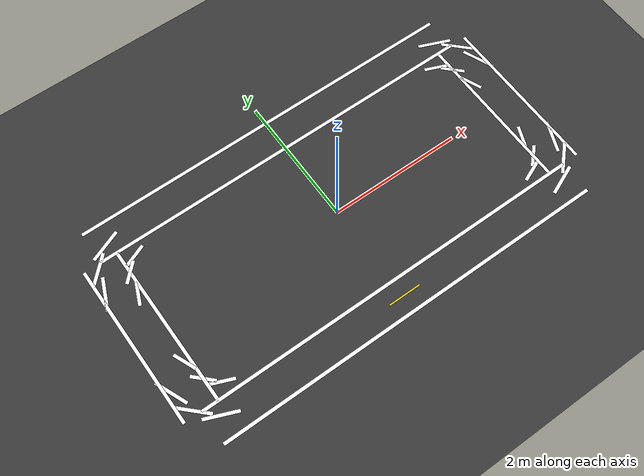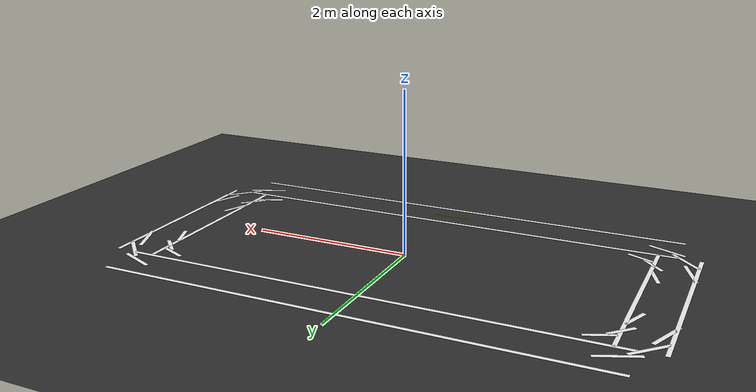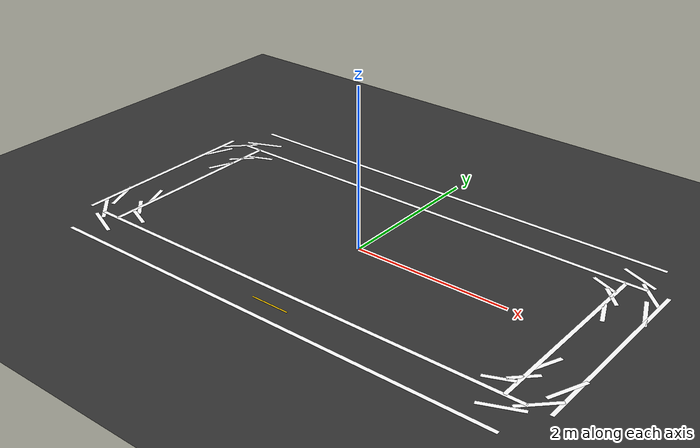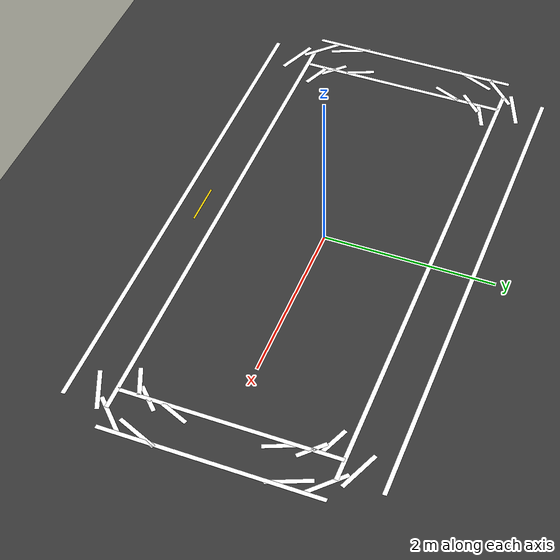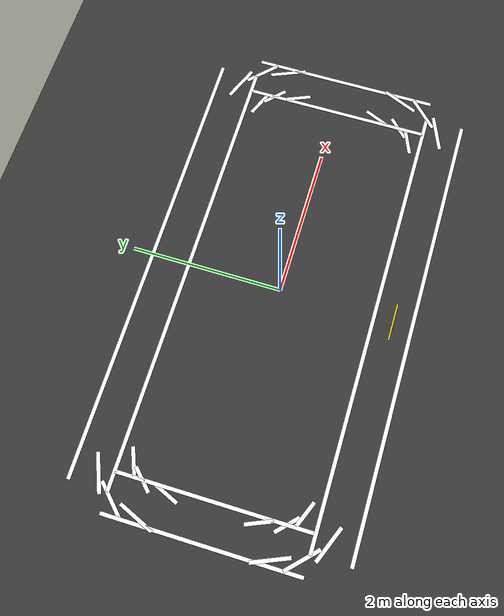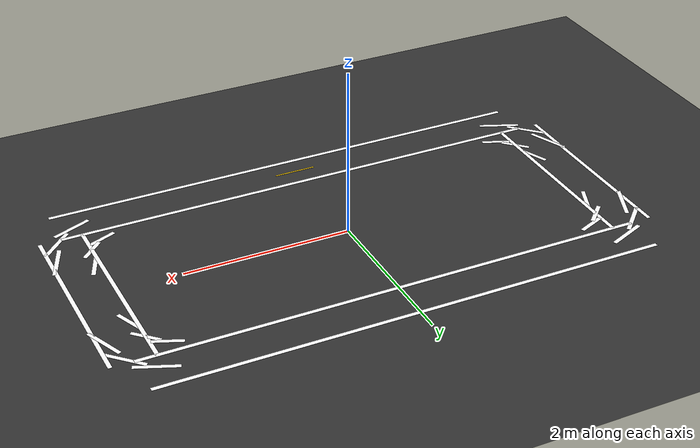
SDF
<?xml version="1.0" ?>
<sdf version="1.6">
  <world name="line_follower_world">

    <!-- Physics settings -->
    <physics type="ode">
      <real_time_update_rate>1000.0</real_time_update_rate>
      <max_step_size>0.001</max_step_size>
      <real_time_factor>1</real_time_factor>
    </physics>

    <!-- Light source -->
    <light name="sun" type="directional">
      <cast_shadows>true</cast_shadows>
      <pose>0 0 10 0 0 0</pose>
      <diffuse>0.8 0.8 0.8 1</diffuse>
      <specular>0.2 0.2 0.2 1</specular>
      <attenuation>
        <range>1000</range>
        <constant>0.9</constant>
        <linear>0.01</linear>
        <quadratic>0.001</quadratic>
      </attenuation>
      <direction>-0.5 0.1 -0.9</direction>
    </light>

    <!-- Ambient light for better visibility -->
    <light name="ambient" type="point">
      <pose>0 0 5 0 0 0</pose>
      <diffuse>0.3 0.3 0.3 1</diffuse>
      <specular>0.1 0.1 0.1 1</specular>
      <attenuation>
        <range>50</range>
        <constant>0.5</constant>
        <linear>0.01</linear>
        <quadratic>0.001</quadratic>
      </attenuation>
    </light>

    <!-- Dark ground plane (asphalt-like) -->
    <model name="ground_plane">
      <static>true</static>
      <link name="link">
        <collision name="collision">
          <geometry>
            <plane>
              <normal>0 0 1</normal>
              <size>20 20</size>
            </plane>
          </geometry>
          <surface>
            <friction>
              <ode>
                <mu>100</mu>
                <mu2>50</mu2>
              </ode>
            </friction>
          </surface>
        </collision>
        <visual name="visual">
          <geometry>
            <plane>
              <normal>0 0 1</normal>
              <size>20 20</size>
            </plane>
          </geometry>
          <material>
            <ambient>0.15 0.15 0.15 1</ambient>
            <diffuse>0.2 0.2 0.2 1</diffuse>
            <specular>0.1 0.1 0.1 1</specular>
          </material>
        </visual>
      </link>
    </model>

    <!-- ========== WHITE LINE TRACK ========== -->
    <!-- Track layout: Rectangular loop with rounded corners -->
    <!-- Road width: 0.5m (distance between two white lines) -->
    <!-- Line width: 0.05m (5cm) -->

    <!-- ===== STRAIGHT SECTION 1: Bottom (X direction, Y=-1.5) ===== -->
    <!-- Left line -->
    <model name="line_bottom_left">
      <static>true</static>
      <pose>0 -1.75 0.001 0 0 0</pose>
      <link name="link">
        <visual name="visual">
          <geometry>
            <box>
              <size>6 0.05 0.002</size>
            </box>
          </geometry>
          <material>
            <ambient>1 1 1 1</ambient>
            <diffuse>1 1 1 1</diffuse>
            <specular>0.5 0.5 0.5 1</specular>
          </material>
        </visual>
      </link>
    </model>

    <!-- Right line -->
    <model name="line_bottom_right">
      <static>true</static>
      <pose>0 -1.25 0.001 0 0 0</pose>
      <link name="link">
        <visual name="visual">
          <geometry>
            <box>
              <size>6 0.05 0.002</size>
            </box>
          </geometry>
          <material>
            <ambient>1 1 1 1</ambient>
            <diffuse>1 1 1 1</diffuse>
            <specular>0.5 0.5 0.5 1</specular>
          </material>
        </visual>
      </link>
    </model>

    <!-- ===== STRAIGHT SECTION 2: Top (X direction, Y=1.5) ===== -->
    <!-- Left line -->
    <model name="line_top_left">
      <static>true</static>
      <pose>0 1.25 0.001 0 0 0</pose>
      <link name="link">
        <visual name="visual">
          <geometry>
            <box>
              <size>6 0.05 0.002</size>
            </box>
          </geometry>
          <material>
            <ambient>1 1 1 1</ambient>
            <diffuse>1 1 1 1</diffuse>
            <specular>0.5 0.5 0.5 1</specular>
          </material>
        </visual>
      </link>
    </model>

    <!-- Right line -->
    <model name="line_top_right">
      <static>true</static>
      <pose>0 1.75 0.001 0 0 0</pose>
      <link name="link">
        <visual name="visual">
          <geometry>
            <box>
              <size>6 0.05 0.002</size>
            </box>
          </geometry>
          <material>
            <ambient>1 1 1 1</ambient>
            <diffuse>1 1 1 1</diffuse>
            <specular>0.5 0.5 0.5 1</specular>
          </material>
        </visual>
      </link>
    </model>

    <!-- ===== STRAIGHT SECTION 3: Left side (Y direction, X=-3) ===== -->
    <!-- Inner line -->
    <model name="line_left_inner">
      <static>true</static>
      <pose>-2.75 0 0.001 0 0 1.5708</pose>
      <link name="link">
        <visual name="visual">
          <geometry>
            <box>
              <size>2.5 0.05 0.002</size>
            </box>
          </geometry>
          <material>
            <ambient>1 1 1 1</ambient>
            <diffuse>1 1 1 1</diffuse>
            <specular>0.5 0.5 0.5 1</specular>
          </material>
        </visual>
      </link>
    </model>

    <!-- Outer line -->
    <model name="line_left_outer">
      <static>true</static>
      <pose>-3.25 0 0.001 0 0 1.5708</pose>
      <link name="link">
        <visual name="visual">
          <geometry>
            <box>
              <size>2.5 0.05 0.002</size>
            </box>
          </geometry>
          <material>
            <ambient>1 1 1 1</ambient>
            <diffuse>1 1 1 1</diffuse>
            <specular>0.5 0.5 0.5 1</specular>
          </material>
        </visual>
      </link>
    </model>

    <!-- ===== STRAIGHT SECTION 4: Right side (Y direction, X=3) ===== -->
    <!-- Inner line -->
    <model name="line_right_inner">
      <static>true</static>
      <pose>2.75 0 0.001 0 0 1.5708</pose>
      <link name="link">
        <visual name="visual">
          <geometry>
            <box>
              <size>2.5 0.05 0.002</size>
            </box>
          </geometry>
          <material>
            <ambient>1 1 1 1</ambient>
            <diffuse>1 1 1 1</diffuse>
            <specular>0.5 0.5 0.5 1</specular>
          </material>
        </visual>
      </link>
    </model>

    <!-- Outer line -->
    <model name="line_right_outer">
      <static>true</static>
      <pose>3.25 0 0.001 0 0 1.5708</pose>
      <link name="link">
        <visual name="visual">
          <geometry>
            <box>
              <size>2.5 0.05 0.002</size>
            </box>
          </geometry>
          <material>
            <ambient>1 1 1 1</ambient>
            <diffuse>1 1 1 1</diffuse>
            <specular>0.5 0.5 0.5 1</specular>
          </material>
        </visual>
      </link>
    </model>

    <!-- ===== CORNER 1: Bottom-Right (90 degree turn) ===== -->
    <!-- Using arc segments for smooth corner -->
    <model name="corner_br_outer_1">
      <static>true</static>
      <pose>2.823 -1.427 0.001 0 0 0.393</pose>
      <link name="link">
        <visual name="visual">
          <geometry><box><size>0.5 0.05 0.002</size></box></geometry>
          <material><ambient>1 1 1 1</ambient><diffuse>1 1 1 1</diffuse></material>
        </visual>
      </link>
    </model>
    <model name="corner_br_outer_2">
      <static>true</static>
      <pose>3.073 -1.177 0.001 0 0 0.785</pose>
      <link name="link">
        <visual name="visual">
          <geometry><box><size>0.5 0.05 0.002</size></box></geometry>
          <material><ambient>1 1 1 1</ambient><diffuse>1 1 1 1</diffuse></material>
        </visual>
      </link>
    </model>
    <model name="corner_br_outer_3">
      <static>true</static>
      <pose>3.177 -0.823 0.001 0 0 1.178</pose>
      <link name="link">
        <visual name="visual">
          <geometry><box><size>0.5 0.05 0.002</size></box></geometry>
          <material><ambient>1 1 1 1</ambient><diffuse>1 1 1 1</diffuse></material>
        </visual>
      </link>
    </model>

    <model name="corner_br_inner_1">
      <static>true</static>
      <pose>2.573 -1.073 0.001 0 0 0.393</pose>
      <link name="link">
        <visual name="visual">
          <geometry><box><size>0.35 0.05 0.002</size></box></geometry>
          <material><ambient>1 1 1 1</ambient><diffuse>1 1 1 1</diffuse></material>
        </visual>
      </link>
    </model>
    <model name="corner_br_inner_2">
      <static>true</static>
      <pose>2.75 -0.9 0.001 0 0 0.785</pose>
      <link name="link">
        <visual name="visual">
          <geometry><box><size>0.35 0.05 0.002</size></box></geometry>
          <material><ambient>1 1 1 1</ambient><diffuse>1 1 1 1</diffuse></material>
        </visual>
      </link>
    </model>
    <model name="corner_br_inner_3">
      <static>true</static>
      <pose>2.823 -0.573 0.001 0 0 1.178</pose>
      <link name="link">
        <visual name="visual">
          <geometry><box><size>0.35 0.05 0.002</size></box></geometry>
          <material><ambient>1 1 1 1</ambient><diffuse>1 1 1 1</diffuse></material>
        </visual>
      </link>
    </model>

    <!-- ===== CORNER 2: Bottom-Left (90 degree turn) ===== -->
    <model name="corner_bl_outer_1">
      <static>true</static>
      <pose>-2.823 -1.427 0.001 0 0 -0.393</pose>
      <link name="link">
        <visual name="visual">
          <geometry><box><size>0.5 0.05 0.002</size></box></geometry>
          <material><ambient>1 1 1 1</ambient><diffuse>1 1 1 1</diffuse></material>
        </visual>
      </link>
    </model>
    <model name="corner_bl_outer_2">
      <static>true</static>
      <pose>-3.073 -1.177 0.001 0 0 -0.785</pose>
      <link name="link">
        <visual name="visual">
          <geometry><box><size>0.5 0.05 0.002</size></box></geometry>
          <material><ambient>1 1 1 1</ambient><diffuse>1 1 1 1</diffuse></material>
        </visual>
      </link>
    </model>
    <model name="corner_bl_outer_3">
      <static>true</static>
      <pose>-3.177 -0.823 0.001 0 0 -1.178</pose>
      <link name="link">
        <visual name="visual">
          <geometry><box><size>0.5 0.05 0.002</size></box></geometry>
          <material><ambient>1 1 1 1</ambient><diffuse>1 1 1 1</diffuse></material>
        </visual>
      </link>
    </model>

    <model name="corner_bl_inner_1">
      <static>true</static>
      <pose>-2.573 -1.073 0.001 0 0 -0.393</pose>
      <link name="link">
        <visual name="visual">
          <geometry><box><size>0.35 0.05 0.002</size></box></geometry>
          <material><ambient>1 1 1 1</ambient><diffuse>1 1 1 1</diffuse></material>
        </visual>
      </link>
    </model>
    <model name="corner_bl_inner_2">
      <static>true</static>
      <pose>-2.75 -0.9 0.001 0 0 -0.785</pose>
      <link name="link">
        <visual name="visual">
          <geometry><box><size>0.35 0.05 0.002</size></box></geometry>
          <material><ambient>1 1 1 1</ambient><diffuse>1 1 1 1</diffuse></material>
        </visual>
      </link>
    </model>
    <model name="corner_bl_inner_3">
      <static>true</static>
      <pose>-2.823 -0.573 0.001 0 0 -1.178</pose>
      <link name="link">
        <visual name="visual">
          <geometry><box><size>0.35 0.05 0.002</size></box></geometry>
          <material><ambient>1 1 1 1</ambient><diffuse>1 1 1 1</diffuse></material>
        </visual>
      </link>
    </model>

    <!-- ===== CORNER 3: Top-Right (90 degree turn) ===== -->
    <model name="corner_tr_outer_1">
      <static>true</static>
      <pose>2.823 1.427 0.001 0 0 -0.393</pose>
      <link name="link">
        <visual name="visual">
          <geometry><box><size>0.5 0.05 0.002</size></box></geometry>
          <material><ambient>1 1 1 1</ambient><diffuse>1 1 1 1</diffuse></material>
        </visual>
      </link>
    </model>
    <model name="corner_tr_outer_2">
      <static>true</static>
      <pose>3.073 1.177 0.001 0 0 -0.785</pose>
      <link name="link">
        <visual name="visual">
          <geometry><box><size>0.5 0.05 0.002</size></box></geometry>
          <material><ambient>1 1 1 1</ambient><diffuse>1 1 1 1</diffuse></material>
        </visual>
      </link>
    </model>
    <model name="corner_tr_outer_3">
      <static>true</static>
      <pose>3.177 0.823 0.001 0 0 -1.178</pose>
      <link name="link">
        <visual name="visual">
          <geometry><box><size>0.5 0.05 0.002</size></box></geometry>
          <material><ambient>1 1 1 1</ambient><diffuse>1 1 1 1</diffuse></material>
        </visual>
      </link>
    </model>

    <model name="corner_tr_inner_1">
      <static>true</static>
      <pose>2.573 1.073 0.001 0 0 -0.393</pose>
      <link name="link">
        <visual name="visual">
          <geometry><box><size>0.35 0.05 0.002</size></box></geometry>
          <material><ambient>1 1 1 1</ambient><diffuse>1 1 1 1</diffuse></material>
        </visual>
      </link>
    </model>
    <model name="corner_tr_inner_2">
      <static>true</static>
      <pose>2.75 0.9 0.001 0 0 -0.785</pose>
      <link name="link">
        <visual name="visual">
          <geometry><box><size>0.35 0.05 0.002</size></box></geometry>
          <material><ambient>1 1 1 1</ambient><diffuse>1 1 1 1</diffuse></material>
        </visual>
      </link>
    </model>
    <model name="corner_tr_inner_3">
      <static>true</static>
      <pose>2.823 0.573 0.001 0 0 -1.178</pose>
      <link name="link">
        <visual name="visual">
          <geometry><box><size>0.35 0.05 0.002</size></box></geometry>
          <material><ambient>1 1 1 1</ambient><diffuse>1 1 1 1</diffuse></material>
        </visual>
      </link>
    </model>

    <!-- ===== CORNER 4: Top-Left (90 degree turn) ===== -->
    <model name="corner_tl_outer_1">
      <static>true</static>
      <pose>-2.823 1.427 0.001 0 0 0.393</pose>
      <link name="link">
        <visual name="visual">
          <geometry><box><size>0.5 0.05 0.002</size></box></geometry>
          <material><ambient>1 1 1 1</ambient><diffuse>1 1 1 1</diffuse></material>
        </visual>
      </link>
    </model>
    <model name="corner_tl_outer_2">
      <static>true</static>
      <pose>-3.073 1.177 0.001 0 0 0.785</pose>
      <link name="link">
        <visual name="visual">
          <geometry><box><size>0.5 0.05 0.002</size></box></geometry>
          <material><ambient>1 1 1 1</ambient><diffuse>1 1 1 1</diffuse></material>
        </visual>
      </link>
    </model>
    <model name="corner_tl_outer_3">
      <static>true</static>
      <pose>-3.177 0.823 0.001 0 0 1.178</pose>
      <link name="link">
        <visual name="visual">
          <geometry><box><size>0.5 0.05 0.002</size></box></geometry>
          <material><ambient>1 1 1 1</ambient><diffuse>1 1 1 1</diffuse></material>
        </visual>
      </link>
    </model>

    <model name="corner_tl_inner_1">
      <static>true</static>
      <pose>-2.573 1.073 0.001 0 0 0.393</pose>
      <link name="link">
        <visual name="visual">
          <geometry><box><size>0.35 0.05 0.002</size></box></geometry>
          <material><ambient>1 1 1 1</ambient><diffuse>1 1 1 1</diffuse></material>
        </visual>
      </link>
    </model>
    <model name="corner_tl_inner_2">
      <static>true</static>
      <pose>-2.75 0.9 0.001 0 0 0.785</pose>
      <link name="link">
        <visual name="visual">
          <geometry><box><size>0.35 0.05 0.002</size></box></geometry>
          <material><ambient>1 1 1 1</ambient><diffuse>1 1 1 1</diffuse></material>
        </visual>
      </link>
    </model>
    <model name="corner_tl_inner_3">
      <static>true</static>
      <pose>-2.823 0.573 0.001 0 0 1.178</pose>
      <link name="link">
        <visual name="visual">
          <geometry><box><size>0.35 0.05 0.002</size></box></geometry>
          <material><ambient>1 1 1 1</ambient><diffuse>1 1 1 1</diffuse></material>
        </visual>
      </link>
    </model>

    <!-- Start/Finish marker -->
    <model name="start_marker">
      <static>true</static>
      <pose>0 -1.5 0.001 0 0 0</pose>
      <link name="link">
        <visual name="visual">
          <geometry>
            <box>
              <size>0.5 0.02 0.002</size>
            </box>
          </geometry>
          <material>
            <ambient>1 0.8 0 1</ambient>
            <diffuse>1 0.8 0 1</diffuse>
          </material>
        </visual>
      </link>
    </model>

  </world>
</sdf>
